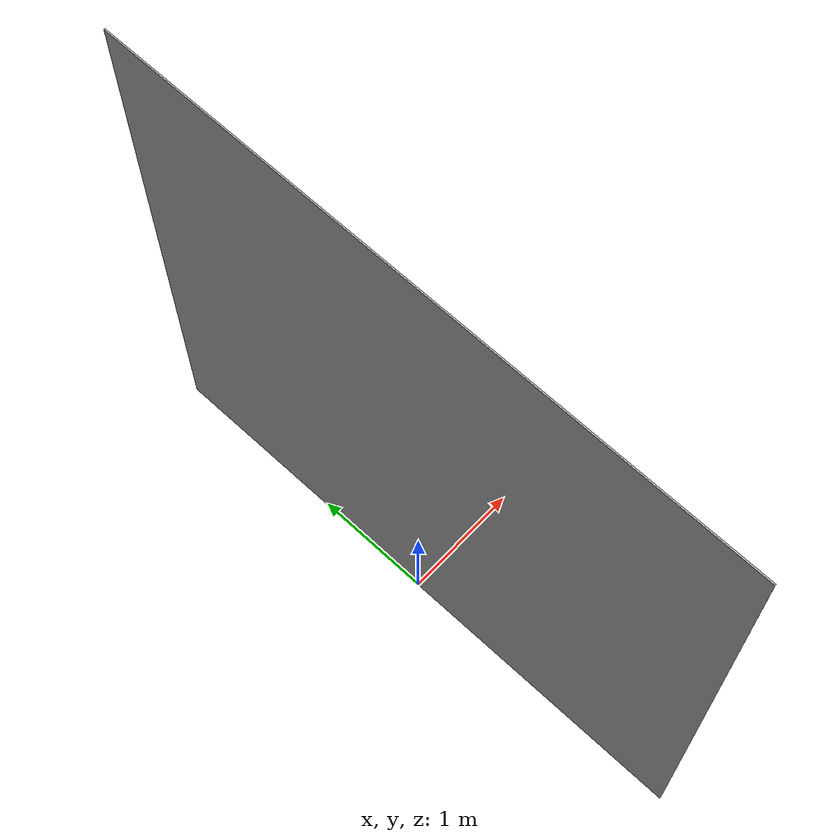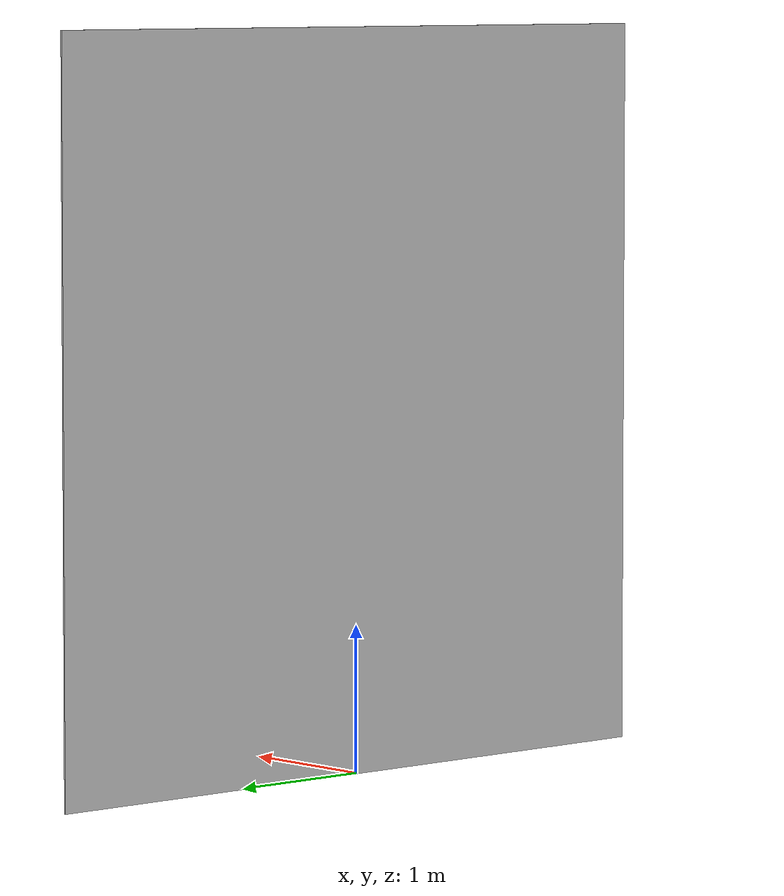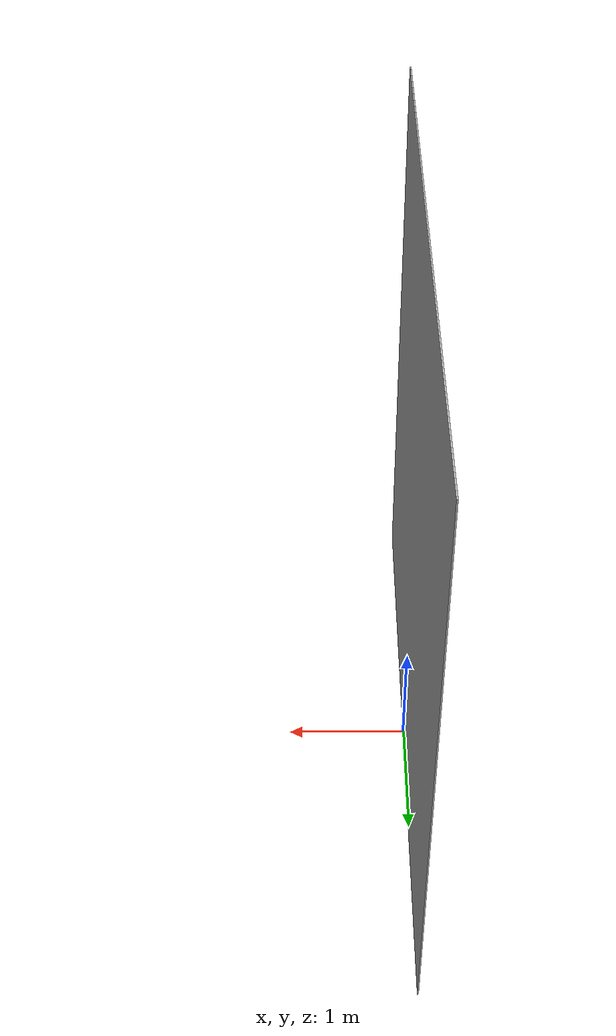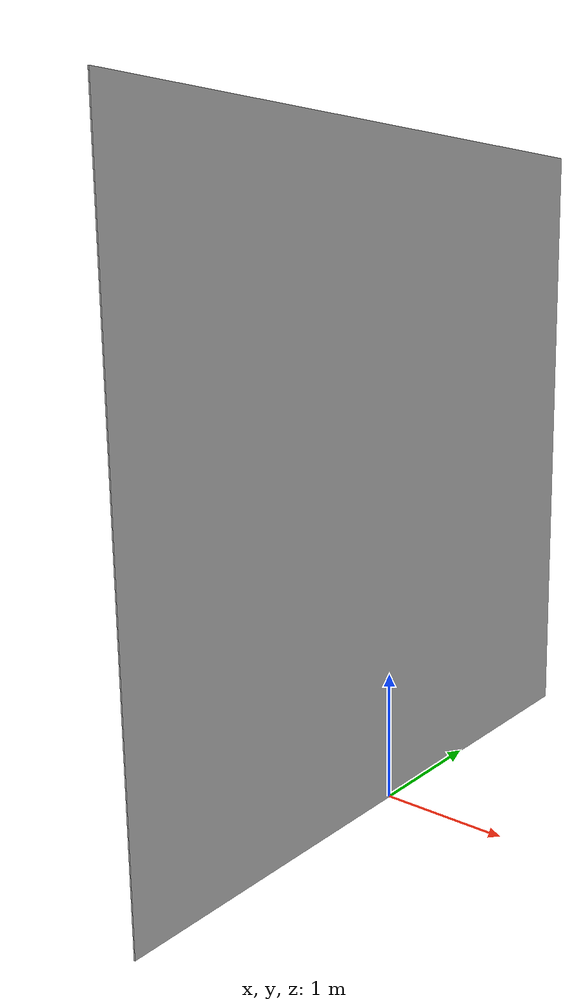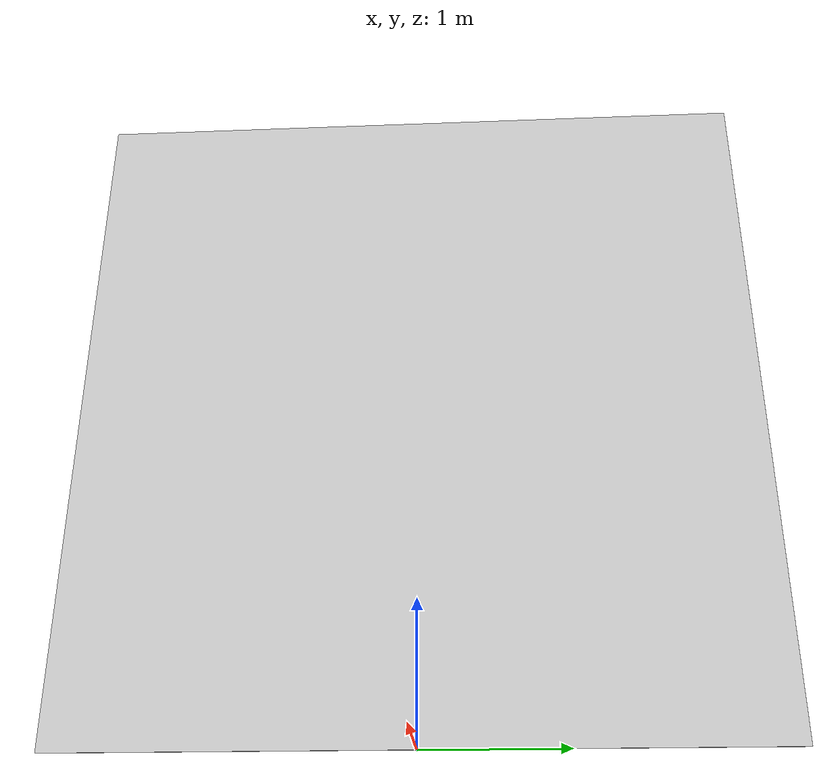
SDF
<?xml version="1.0" ?><sdf version="1.6">
  <model name="formas_geometricas">
    <static>true</static>
    <link name="link">
      <visual name="visual">
        <geometry>
          <mesh>
            <uri>model://formas_geometricas/meshes/Marker1.dae</uri>
            <scale>1.0 10.0 10.0</scale>
          </mesh>
        </geometry>
      </visual>
    </link>
  </model>
</sdf>
